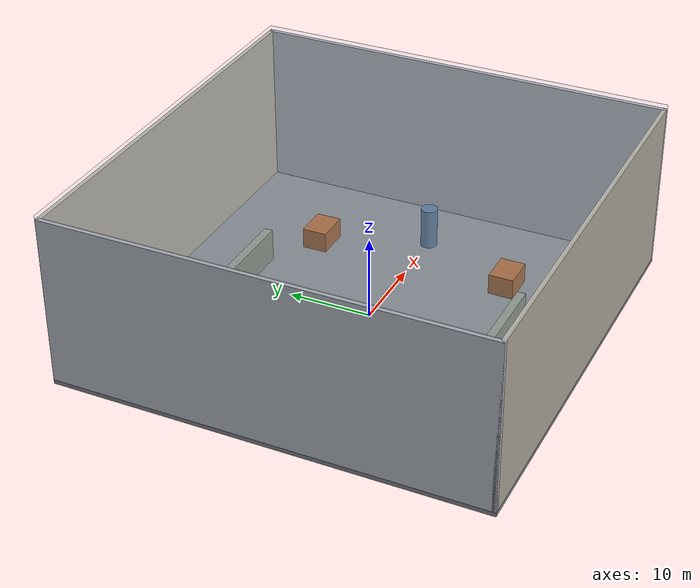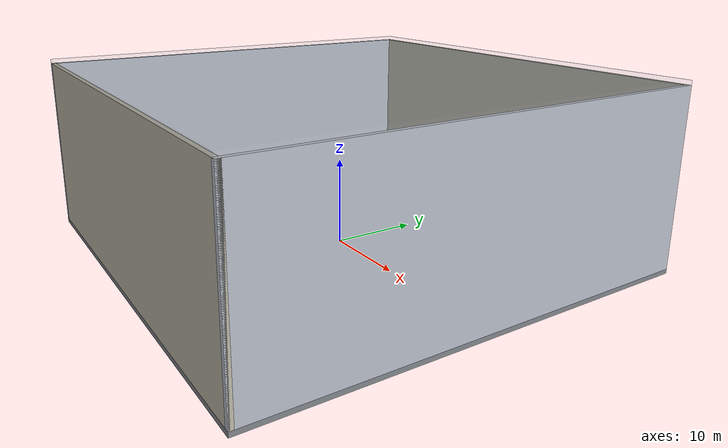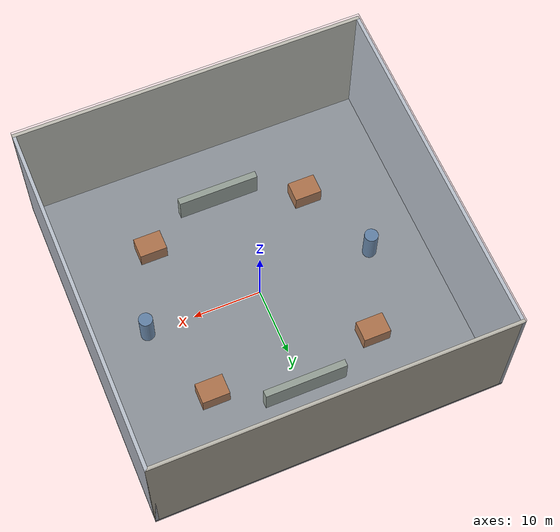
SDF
<?xml version='1.0' encoding='utf-8'?>
<sdf version="1.7">
  <world name="clearing_enclosed">
    <gravity>0 0 -9.81</gravity>
    <physics name="heavy_robot_ode" type="ode">
      <max_step_size>0.001</max_step_size>
      <real_time_factor>1</real_time_factor>
      <real_time_update_rate>1000</real_time_update_rate>
      <ode>
        <solver>
          <type>quick</type>
          <iters>150</iters>
          <sor>1.3</sor>
        </solver>
        <constraints>
          <cfm>0</cfm>
          <erp>0.2</erp>
          <contact_max_correcting_vel>0.1</contact_max_correcting_vel>
          <contact_surface_layer>0.001</contact_surface_layer>
        </constraints>
      </ode>
    </physics>
    <plugin name="gazebo_ros_state" filename="libgazebo_ros_state.so">
      <ros>
        <namespace>/gazebo</namespace>
      </ros>
    </plugin>
    <scene>
      <ambient>0.65 0.65 0.65 1</ambient>
      <background>0.75 0.80 0.86 1</background>
      <shadows>false</shadows>
    </scene>
    <light name="overhead" type="directional">
      <pose>0 0 19 0 0 0</pose>
      <diffuse>0.9 0.9 0.85 1</diffuse>
      <specular>0.1 0.1 0.1 1</specular>
      <direction>-0.3 -0.2 -1</direction>
      <cast_shadows>false</cast_shadows>
    </light>
    <gui fullscreen="false">
      <camera name="user_camera">
        <pose>12 -15 16 0 0.65 2.2</pose>
        <view_controller>orbit</view_controller>
      </camera>
    </gui>
    <!-- Interior clear volume: x/y [-25,25], z [0,20] metres. All geometry is primitive. -->
    <model name="floor">
      <static>true</static>
      <pose>0 0 -0.25 0 0 0</pose>
      <link name="body">
        <collision name="floor_collision">
          <geometry>
            <box>
              <size>51 51 0.5</size>
            </box>
          </geometry>
          <max_contacts>40</max_contacts>
          <surface>
            <friction>
              <ode>
                <mu>1.2</mu>
                <mu2>1.2</mu2>
              </ode>
            </friction>
            <contact>
              <ode>
                <kp>1e9</kp>
                <kd>1e5</kd>
                <max_vel>0.1</max_vel>
                <min_depth>0.001</min_depth>
              </ode>
            </contact>
          </surface>
        </collision>
        <visual name="floor_visual">
          <geometry>
            <box>
              <size>51 51 0.5</size>
            </box>
          </geometry>
          <material>
            <ambient>0.48 0.50 0.52 1</ambient>
            <diffuse>0.48 0.50 0.52 1</diffuse>
          </material>
          <cast_shadows>false</cast_shadows>
        </visual>
      </link>
    </model>
    <model name="wall_east">
      <static>true</static>
      <pose>25.25 0 10 0 0 0</pose>
      <link name="body">
        <collision name="wall_east_collision">
          <geometry>
            <box>
              <size>0.5 51 20</size>
            </box>
          </geometry>
          <max_contacts>40</max_contacts>
          <surface>
            <friction>
              <ode>
                <mu>1.2</mu>
                <mu2>1.2</mu2>
              </ode>
            </friction>
            <contact>
              <ode>
                <kp>1e9</kp>
                <kd>1e5</kd>
                <max_vel>0.1</max_vel>
                <min_depth>0.001</min_depth>
              </ode>
            </contact>
          </surface>
        </collision>
        <visual name="wall_east_visual">
          <geometry>
            <box>
              <size>0.5 51 20</size>
            </box>
          </geometry>
          <material>
            <ambient>0.70 0.72 0.76 1</ambient>
            <diffuse>0.70 0.72 0.76 1</diffuse>
          </material>
          <cast_shadows>false</cast_shadows>
        </visual>
      </link>
    </model>
    <model name="wall_west">
      <static>true</static>
      <pose>-25.25 0 10 0 0 0</pose>
      <link name="body">
        <collision name="wall_west_collision">
          <geometry>
            <box>
              <size>0.5 51 20</size>
            </box>
          </geometry>
          <max_contacts>40</max_contacts>
          <surface>
            <friction>
              <ode>
                <mu>1.2</mu>
                <mu2>1.2</mu2>
              </ode>
            </friction>
            <contact>
              <ode>
                <kp>1e9</kp>
                <kd>1e5</kd>
                <max_vel>0.1</max_vel>
                <min_depth>0.001</min_depth>
              </ode>
            </contact>
          </surface>
        </collision>
        <visual name="wall_west_visual">
          <geometry>
            <box>
              <size>0.5 51 20</size>
            </box>
          </geometry>
          <material>
            <ambient>0.70 0.72 0.76 1</ambient>
            <diffuse>0.70 0.72 0.76 1</diffuse>
          </material>
          <cast_shadows>false</cast_shadows>
        </visual>
      </link>
    </model>
    <model name="wall_north">
      <static>true</static>
      <pose>0 25.25 10 0 0 0</pose>
      <link name="body">
        <collision name="wall_north_collision">
          <geometry>
            <box>
              <size>51 0.5 20</size>
            </box>
          </geometry>
          <max_contacts>40</max_contacts>
          <surface>
            <friction>
              <ode>
                <mu>1.2</mu>
                <mu2>1.2</mu2>
              </ode>
            </friction>
            <contact>
              <ode>
                <kp>1e9</kp>
                <kd>1e5</kd>
                <max_vel>0.1</max_vel>
                <min_depth>0.001</min_depth>
              </ode>
            </contact>
          </surface>
        </collision>
        <visual name="wall_north_visual">
          <geometry>
            <box>
              <size>51 0.5 20</size>
            </box>
          </geometry>
          <material>
            <ambient>0.72 0.70 0.64 1</ambient>
            <diffuse>0.72 0.70 0.64 1</diffuse>
          </material>
          <cast_shadows>false</cast_shadows>
        </visual>
      </link>
    </model>
    <model name="wall_south">
      <static>true</static>
      <pose>0 -25.25 10 0 0 0</pose>
      <link name="body">
        <collision name="wall_south_collision">
          <geometry>
            <box>
              <size>51 0.5 20</size>
            </box>
          </geometry>
          <max_contacts>40</max_contacts>
          <surface>
            <friction>
              <ode>
                <mu>1.2</mu>
                <mu2>1.2</mu2>
              </ode>
            </friction>
            <contact>
              <ode>
                <kp>1e9</kp>
                <kd>1e5</kd>
                <max_vel>0.1</max_vel>
                <min_depth>0.001</min_depth>
              </ode>
            </contact>
          </surface>
        </collision>
        <visual name="wall_south_visual">
          <geometry>
            <box>
              <size>51 0.5 20</size>
            </box>
          </geometry>
          <material>
            <ambient>0.72 0.70 0.64 1</ambient>
            <diffuse>0.72 0.70 0.64 1</diffuse>
          </material>
          <cast_shadows>false</cast_shadows>
        </visual>
      </link>
    </model>
    <model name="ceiling">
      <static>true</static>
      <pose>0 0 20.25 0 0 0</pose>
      <link name="body">
        <collision name="ceiling_collision">
          <geometry>
            <box>
              <size>51 51 0.5</size>
            </box>
          </geometry>
          <max_contacts>40</max_contacts>
          <surface>
            <friction>
              <ode>
                <mu>1.2</mu>
                <mu2>1.2</mu2>
              </ode>
            </friction>
            <contact>
              <ode>
                <kp>1e9</kp>
                <kd>1e5</kd>
                <max_vel>0.1</max_vel>
                <min_depth>0.001</min_depth>
              </ode>
            </contact>
          </surface>
        </collision>
        <visual name="ceiling_visual">
          <geometry>
            <box>
              <size>51 51 0.5</size>
            </box>
          </geometry>
          <material>
            <ambient>0.75 0.80 0.85 1</ambient>
            <diffuse>0.75 0.80 0.85 1</diffuse>
          </material>
          <transparency>0.85</transparency>
          <cast_shadows>false</cast_shadows>
        </visual>
      </link>
    </model>
    <model name="cargo_block_1">
      <static>true</static>
      <pose>-12 -12 1.25 0 0 0</pose>
      <link name="body">
        <collision name="cargo_block_1_collision">
          <geometry>
            <box>
              <size>4 3 2.5</size>
            </box>
          </geometry>
          <max_contacts>40</max_contacts>
          <surface>
            <friction>
              <ode>
                <mu>1.2</mu>
                <mu2>1.2</mu2>
              </ode>
            </friction>
            <contact>
              <ode>
                <kp>1e9</kp>
                <kd>1e5</kd>
                <max_vel>0.1</max_vel>
                <min_depth>0.001</min_depth>
              </ode>
            </contact>
          </surface>
        </collision>
        <visual name="cargo_block_1_visual">
          <geometry>
            <box>
              <size>4 3 2.5</size>
            </box>
          </geometry>
          <material>
            <ambient>0.64 0.35 0.15 1</ambient>
            <diffuse>0.64 0.35 0.15 1</diffuse>
          </material>
          <cast_shadows>false</cast_shadows>
        </visual>
      </link>
    </model>
    <model name="cargo_block_2">
      <static>true</static>
      <pose>-12 12 1.25 0 0 0</pose>
      <link name="body">
        <collision name="cargo_block_2_collision">
          <geometry>
            <box>
              <size>4 3 2.5</size>
            </box>
          </geometry>
          <max_contacts>40</max_contacts>
          <surface>
            <friction>
              <ode>
                <mu>1.2</mu>
                <mu2>1.2</mu2>
              </ode>
            </friction>
            <contact>
              <ode>
                <kp>1e9</kp>
                <kd>1e5</kd>
                <max_vel>0.1</max_vel>
                <min_depth>0.001</min_depth>
              </ode>
            </contact>
          </surface>
        </collision>
        <visual name="cargo_block_2_visual">
          <geometry>
            <box>
              <size>4 3 2.5</size>
            </box>
          </geometry>
          <material>
            <ambient>0.64 0.35 0.15 1</ambient>
            <diffuse>0.64 0.35 0.15 1</diffuse>
          </material>
          <cast_shadows>false</cast_shadows>
        </visual>
      </link>
    </model>
    <model name="cargo_block_3">
      <static>true</static>
      <pose>12 -12 1.25 0 0 0</pose>
      <link name="body">
        <collision name="cargo_block_3_collision">
          <geometry>
            <box>
              <size>4 3 2.5</size>
            </box>
          </geometry>
          <max_contacts>40</max_contacts>
          <surface>
            <friction>
              <ode>
                <mu>1.2</mu>
                <mu2>1.2</mu2>
              </ode>
            </friction>
            <contact>
              <ode>
                <kp>1e9</kp>
                <kd>1e5</kd>
                <max_vel>0.1</max_vel>
                <min_depth>0.001</min_depth>
              </ode>
            </contact>
          </surface>
        </collision>
        <visual name="cargo_block_3_visual">
          <geometry>
            <box>
              <size>4 3 2.5</size>
            </box>
          </geometry>
          <material>
            <ambient>0.64 0.35 0.15 1</ambient>
            <diffuse>0.64 0.35 0.15 1</diffuse>
          </material>
          <cast_shadows>false</cast_shadows>
        </visual>
      </link>
    </model>
    <model name="cargo_block_4">
      <static>true</static>
      <pose>12 12 1.25 0 0 0</pose>
      <link name="body">
        <collision name="cargo_block_4_collision">
          <geometry>
            <box>
              <size>4 3 2.5</size>
            </box>
          </geometry>
          <max_contacts>40</max_contacts>
          <surface>
            <friction>
              <ode>
                <mu>1.2</mu>
                <mu2>1.2</mu2>
              </ode>
            </friction>
            <contact>
              <ode>
                <kp>1e9</kp>
                <kd>1e5</kd>
                <max_vel>0.1</max_vel>
                <min_depth>0.001</min_depth>
              </ode>
            </contact>
          </surface>
        </collision>
        <visual name="cargo_block_4_visual">
          <geometry>
            <box>
              <size>4 3 2.5</size>
            </box>
          </geometry>
          <material>
            <ambient>0.64 0.35 0.15 1</ambient>
            <diffuse>0.64 0.35 0.15 1</diffuse>
          </material>
          <cast_shadows>false</cast_shadows>
        </visual>
      </link>
    </model>
    <model name="pillar_1">
      <static>true</static>
      <pose>-17 0 2.5 0 0 0</pose>
      <link name="body">
        <collision name="pillar_1_collision">
          <geometry>
            <cylinder>
              <radius>1.0</radius>
              <length>5.0</length>
            </cylinder>
          </geometry>
          <max_contacts>40</max_contacts>
          <surface>
            <friction>
              <ode>
                <mu>1.2</mu>
                <mu2>1.2</mu2>
              </ode>
            </friction>
            <contact>
              <ode>
                <kp>1e9</kp>
                <kd>1e5</kd>
                <max_vel>0.1</max_vel>
                <min_depth>0.001</min_depth>
              </ode>
            </contact>
          </surface>
        </collision>
        <visual name="pillar_1_visual">
          <geometry>
            <cylinder>
              <radius>1.0</radius>
              <length>5.0</length>
            </cylinder>
          </geometry>
          <material>
            <ambient>0.28 0.42 0.58 1</ambient>
            <diffuse>0.28 0.42 0.58 1</diffuse>
          </material>
          <cast_shadows>false</cast_shadows>
        </visual>
      </link>
    </model>
    <model name="pillar_2">
      <static>true</static>
      <pose>17 0 2.5 0 0 0</pose>
      <link name="body">
        <collision name="pillar_2_collision">
          <geometry>
            <cylinder>
              <radius>1.0</radius>
              <length>5.0</length>
            </cylinder>
          </geometry>
          <max_contacts>40</max_contacts>
          <surface>
            <friction>
              <ode>
                <mu>1.2</mu>
                <mu2>1.2</mu2>
              </ode>
            </friction>
            <contact>
              <ode>
                <kp>1e9</kp>
                <kd>1e5</kd>
                <max_vel>0.1</max_vel>
                <min_depth>0.001</min_depth>
              </ode>
            </contact>
          </surface>
        </collision>
        <visual name="pillar_2_visual">
          <geometry>
            <cylinder>
              <radius>1.0</radius>
              <length>5.0</length>
            </cylinder>
          </geometry>
          <material>
            <ambient>0.28 0.42 0.58 1</ambient>
            <diffuse>0.28 0.42 0.58 1</diffuse>
          </material>
          <cast_shadows>false</cast_shadows>
        </visual>
      </link>
    </model>
    <model name="divider_1">
      <static>true</static>
      <pose>0 -16 2 0 0 0</pose>
      <link name="body">
        <collision name="divider_1_collision">
          <geometry>
            <box>
              <size>12 1 4</size>
            </box>
          </geometry>
          <max_contacts>40</max_contacts>
          <surface>
            <friction>
              <ode>
                <mu>1.2</mu>
                <mu2>1.2</mu2>
              </ode>
            </friction>
            <contact>
              <ode>
                <kp>1e9</kp>
                <kd>1e5</kd>
                <max_vel>0.1</max_vel>
                <min_depth>0.001</min_depth>
              </ode>
            </contact>
          </surface>
        </collision>
        <visual name="divider_1_visual">
          <geometry>
            <box>
              <size>12 1 4</size>
            </box>
          </geometry>
          <material>
            <ambient>0.52 0.56 0.50 1</ambient>
            <diffuse>0.52 0.56 0.50 1</diffuse>
          </material>
          <cast_shadows>false</cast_shadows>
        </visual>
      </link>
    </model>
    <model name="divider_2">
      <static>true</static>
      <pose>0 16 2 0 0 0</pose>
      <link name="body">
        <collision name="divider_2_collision">
          <geometry>
            <box>
              <size>12 1 4</size>
            </box>
          </geometry>
          <max_contacts>40</max_contacts>
          <surface>
            <friction>
              <ode>
                <mu>1.2</mu>
                <mu2>1.2</mu2>
              </ode>
            </friction>
            <contact>
              <ode>
                <kp>1e9</kp>
                <kd>1e5</kd>
                <max_vel>0.1</max_vel>
                <min_depth>0.001</min_depth>
              </ode>
            </contact>
          </surface>
        </collision>
        <visual name="divider_2_visual">
          <geometry>
            <box>
              <size>12 1 4</size>
            </box>
          </geometry>
          <material>
            <ambient>0.52 0.56 0.50 1</ambient>
            <diffuse>0.52 0.56 0.50 1</diffuse>
          </material>
          <cast_shadows>false</cast_shadows>
        </visual>
      </link>
    </model>
  </world>
</sdf>
